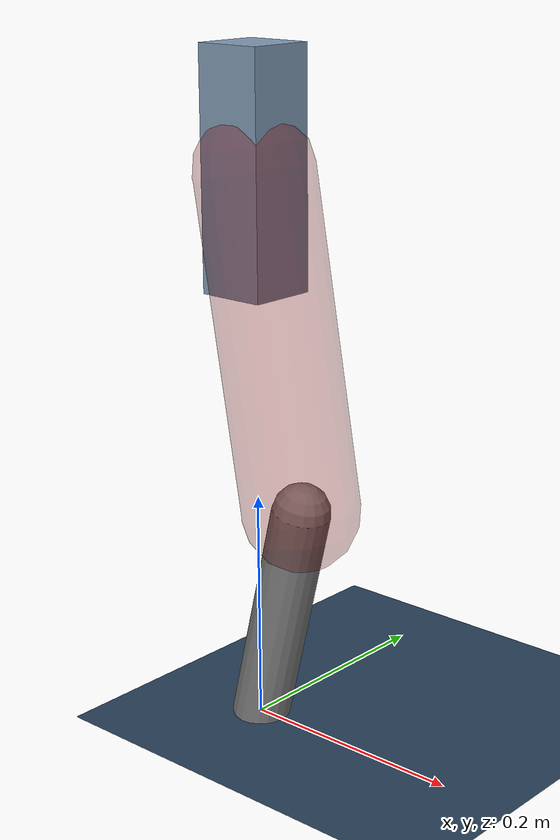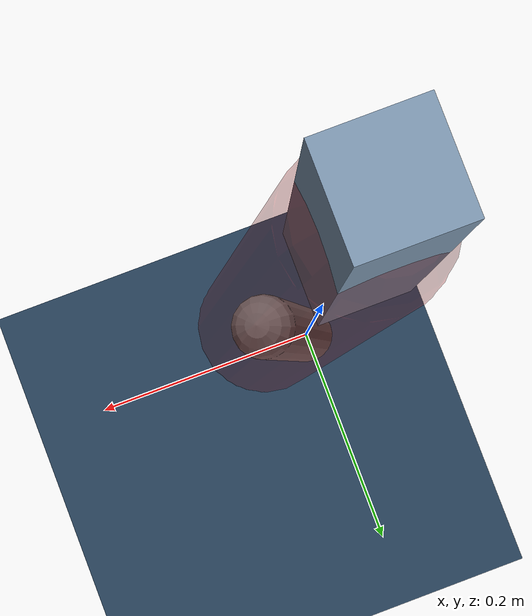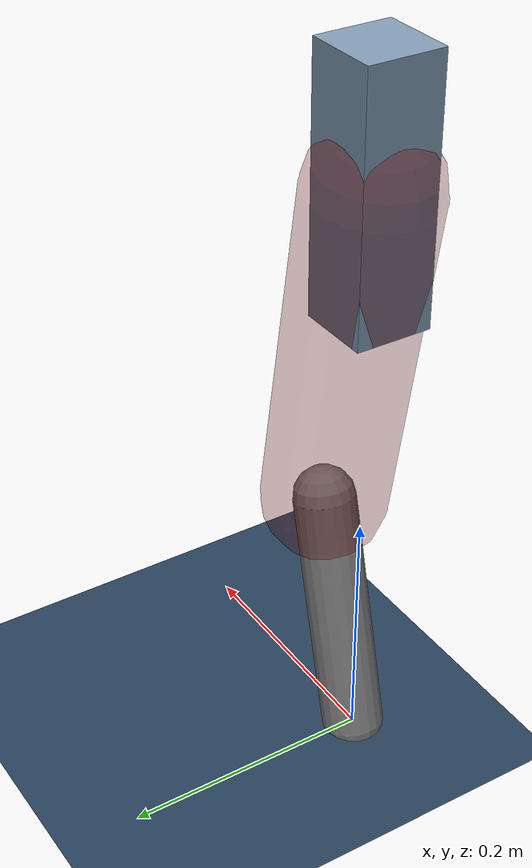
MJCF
<mujoco model="Hopper2D">
	<compiler inertiafromgeom="true" angle="radian" />
	<option timestep="0.001" integrator="implicit" cone="elliptic" solver="Newton" tolerance="1e-10" />

	<default>
		<geom contype="1" conaffinity="1" condim="3" friction="2 0.005 0.0001" solref="0.005 1" />
		<joint limited="true" damping="0.1" />
	</default>

	<asset>
		<texture name="skybox" type="skybox" builtin="gradient" rgb1=".4 .6 .8" rgb2="0 0 0" width="800" height="800" />
		<texture name="grid" type="2d" builtin="checker" rgb1=".1 .2 .3" rgb2=".2 .3 .4" width="300" height="300" mark="edge" markrgb=".2 .3 .4" />
		<material name="ground" texture="grid" texrepeat="1 1" texuniform="true" reflectance="0.1" />
		<material name="leg" rgba="0.5 0.6 0.7 1" />
	</asset>

	<worldbody>

		<geom name="floor" type="plane" size="5 5 0.25" material="ground" />

		<light directional="false" diffuse="0.8 0.8 0.8" specular="0.3 0.3 0.3" pos="0 0 2" dir="0 0 -1" />
		<light mode="targetbodycom" target="base" directional="false" diffuse="0.8 0.8 0.8" specular="0.3 0.3 0.3" pos="0 0 2" dir="0 0 -1" />

		<camera name="fixed" pos="0 -2 1" xyaxes="1 0 0 0 0 1" />
		<camera name="tracking" mode="trackcom" pos="0 -3 1" />

		<body name="root" pos="0 0 0.4774063688823572">
			<joint name="slide_x" type="slide" axis="1 0 0" range="-100 100" />
			<joint name="slide_z" type="slide" axis="0 0 1" range="0 10" />

			<body name="base" pos="0 0 0">
				<geom name="torso" type="box" size="0.03 0.03 0.1" mass="2.27" material="leg" />

				<body name="link1" pos="0 0 0" euler="0 1.3988480164465487 0">
					<joint type="hinge" axis="0 -1 0" pos="0 0 0" name="hinge1" limited="true" range="-3.14 3.14" stiffness="0" damping="0.1" />
					<geom name="thigh" type="capsule" fromto="0 0 0 0.28309934571839557 0 0" size="0.05" rgba="0.5 0 0 0.3" mass="0.9433682334396681" />

					<body name="link2" pos="0.28309934571839557 0 0" euler="0 0.4113165640159897 0">
						<joint type="hinge" axis="0 -1 0" pos="0 0 0" name="hinge2" limited="true" range="-3.14 3.14" stiffness="0" damping="0.1" />
						<geom name="shank" type="capsule" fromto="0 0 0 0.20430702316396168 0 0" size="0.025" mass="0.4045456185311694" />

					</body>
				</body>
			</body>
		</body>
	</worldbody>

	<actuator>
		<motor name="torque1" joint="hinge1" ctrlrange="-58.40406533966199 58.40406533966199" ctrllimited="true" gear="1" />
		<motor name="torque2" joint="hinge2" ctrlrange="-114.97968231798558 114.97968231798558" ctrllimited="true" gear="1" />
	</actuator>
</mujoco>
